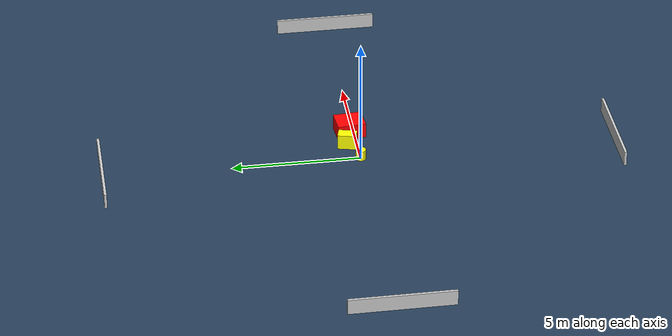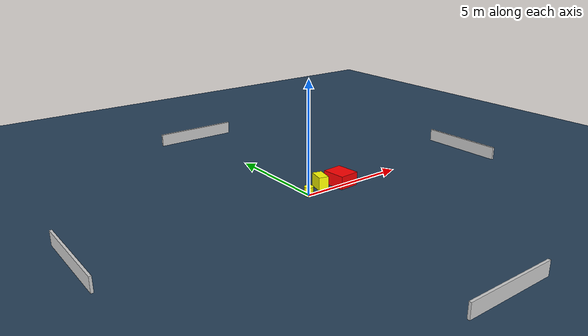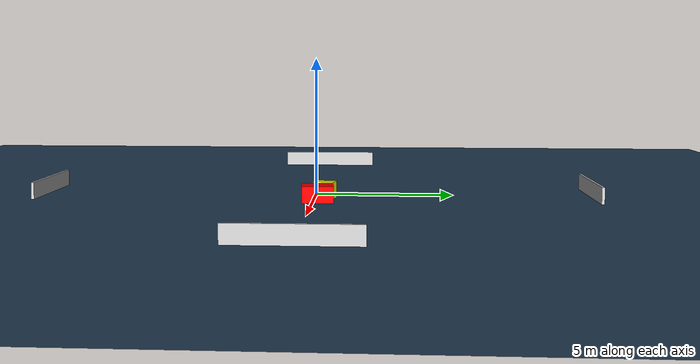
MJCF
<?xml version="1.0" ?>
<mujoco model="generated_environment">
  <option timestep="0.01" integrator="RK4" cone="elliptic"/>
  <default>
    <geom density="1"/>
  </default>
  <asset>
    <texture builtin="gradient" height="3072" name="skybox" rgb1="0.3 0.5 0.7" rgb2="0 0 0" type="skybox" width="512"/>
    <texture builtin="checker" height="300" name="groundplane" rgb1="0.2 0.3 0.4" rgb2="0.1 0.2 0.3" type="2d" width="300"/>
    <material name="groundplane" reflectance="0.2" texrepeat="5 5" texture="groundplane"/>
  </asset>
  <worldbody>
    <light dir="0 0 -1" directional="true" pos="0 0 1.5"/>
    <geom condim="3" friction="0.5 0.005 0.001" material="groundplane" name="floor" pos="0 0 0" size="0 0 0.05" type="plane"/>
    <body name="walls">
      <geom name="wall_1" condim="4" pos="-10.0 0.0 0.3" rgba="0.800000011920929 0.800000011920929 0.800000011920929 1.0" size="0.05 2.0 0.3" type="box"/>
      <geom name="wall_2" condim="4" pos="10.0 0.0 0.3" rgba="0.800000011920929 0.800000011920929 0.800000011920929 1.0" size="0.05 2.0 0.3" type="box"/>
      <geom name="wall_3" condim="4" pos="0.0 -10.0 0.3" rgba="0.800000011920929 0.800000011920929 0.800000011920929 1.0" size="2.0 0.05 0.3" type="box"/>
      <geom name="wall_4" condim="4" pos="0.0 10.0 0.3" rgba="0.800000011920929 0.800000011920929 0.800000011920929 1.0" size="2.0 0.05 0.3" type="box"/>
    </body>
    <body name="robot">
      <joint name="joint_x" type="slide" pos="0 0 0" axis="1 0 0"/>
      <joint name="joint_y" type="slide" pos="0 0 0" axis="0 1 0"/>
      <geom name="robot" type="cylinder" pos="0.0 0.0 0.2" size="0.2 0.2 0.0" mass="5.0" friction="1.0 0.005 0.0001" condim="4" rgba="1.0 1.0 0.0 1.0"/>
    </body>
    <body name="obstacle_1_movable">
      <geom name="obstacle_1_movable" condim="4" pos="0.9354889575772087 0.386642239078064 0.3" euler="0 0 256.28315929538593" friction="0.0 0.005 0.001" rgba="1.0 1.0 0.0 1.0" size="0.3638071668674267 0.22271196102380872 0.3" type="box" mass="0.1"/>
      <joint type="free"/>
    </body>
    <body name="obstacle_2_static">
      <geom name="obstacle_2_static" condim="4" pos="1.9138496638379365 0.16229379931349458 0.3" euler="0 0 184.67737712090306" friction="0.0 0.005 0.001" rgba="1.0 0.0 0.0 1.0" size="0.4721690710007025 0.5568851298120268 0.3" type="box"/>
    </body>
  </worldbody>
  <actuator>
    <motor name="actuator_x" joint="joint_x" gear="1" ctrlrange="-1 1"/>
    <motor name="actuator_y" joint="joint_y" gear="1" ctrlrange="-1 1"/>
  </actuator>
</mujoco>
